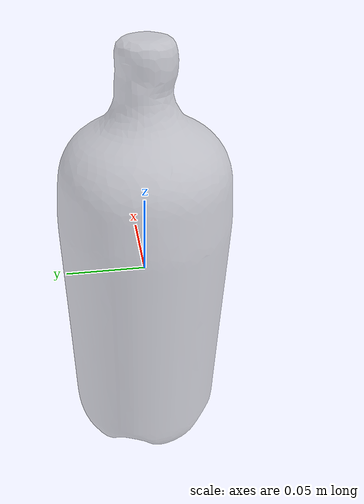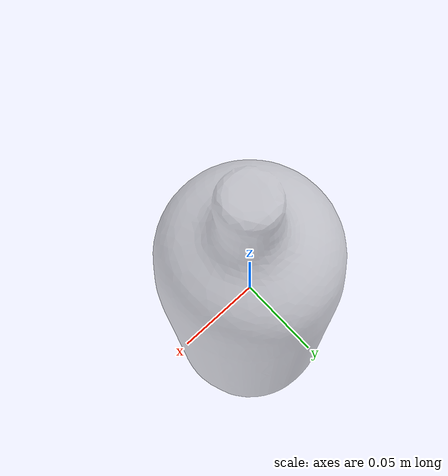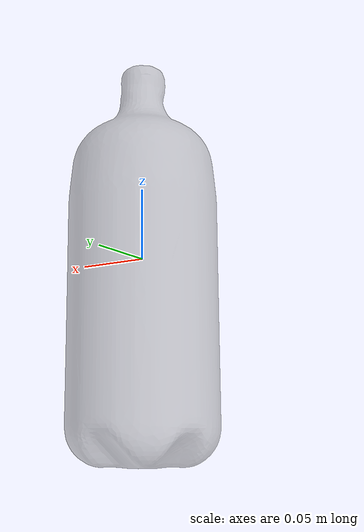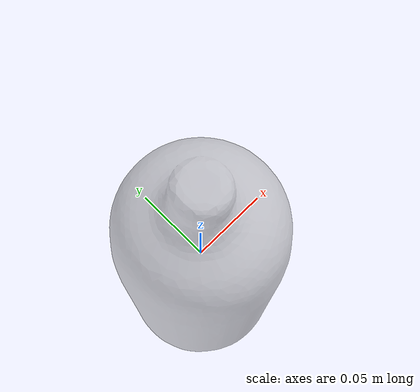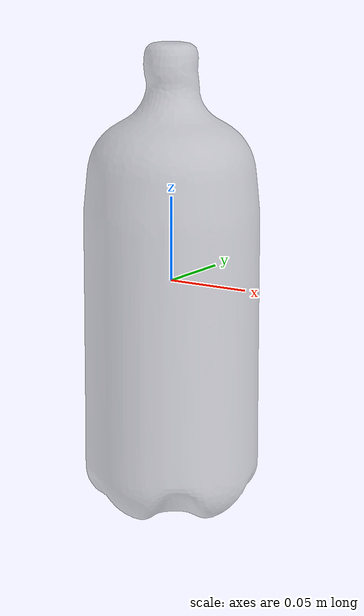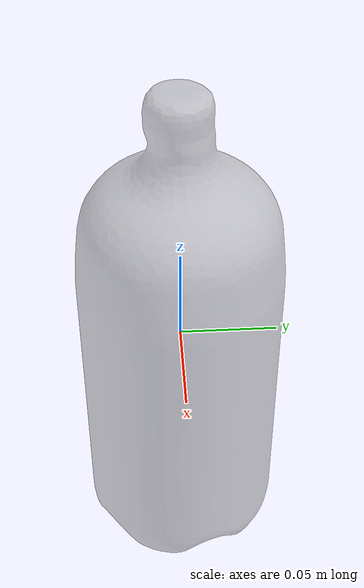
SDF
<?xml version='1.0'?>
<sdf version='1.4'>
  <model name="object">
    <link name='link'>
      <pose>0.0 0 0 0 0 0</pose>
      <inertial>
        <mass>1.846424</mass>
        <inertia>
          <ixx>0.00909012</ixx>
          <ixy>0</ixy>
          <ixz>0</ixz>
          <iyy>0.00908994</iyy>
          <iyz>0</iyz>
          <izz>0.00230223</izz>
        </inertia>
      </inertial>
      <collision name='c_bp_050'>
        <geometry>
          <mesh>
            <scale>1 1 1</scale>
            <uri>model://bottle_poisson_050/mesh/bottle_poisson_050.dae</uri>
          </mesh>
        </geometry>
        <surface>
          <contact>
            <ode>
              <kp>1000000</kp>
              <kd>100</kd>
              <max_vel>1000.0</max_vel>
              <min_depth>0.0</min_depth>
            </ode>
          </contact>
        </surface>
      </collision>

      <visual name='v_bp_050'>
        <geometry>
          <mesh>
            <scale>1 1 1</scale>
            <uri>model://bottle_poisson_050/mesh/bottle_poisson_050.dae</uri>
          </mesh>
        </geometry>
        <material>
          <script>
            <name>Gazebo/GreyTransparent</name>
            <uri>file://media/materials/scripts/gazebo.material</uri>
          </script>
        </material>
      </visual>

      <velocity_decay>
        <linear>0.0004</linear>
        <angular>0.0004</angular>
      </velocity_decay>
    </link>
  </model>
</sdf>
